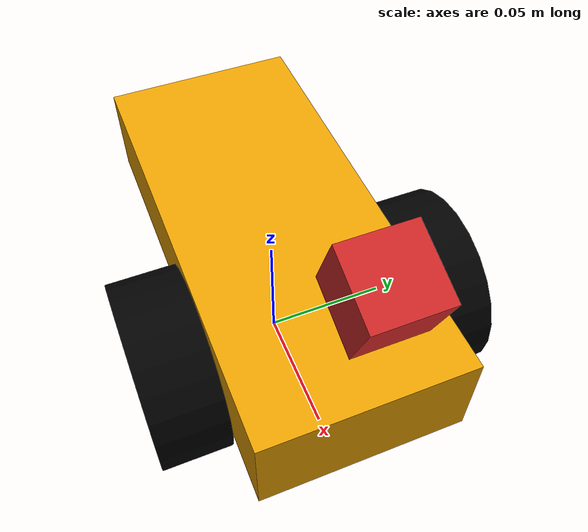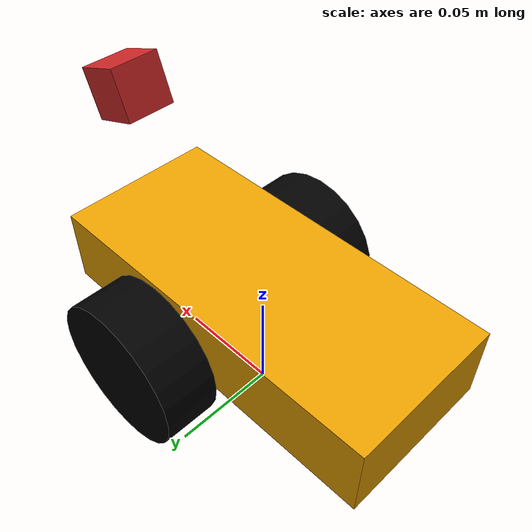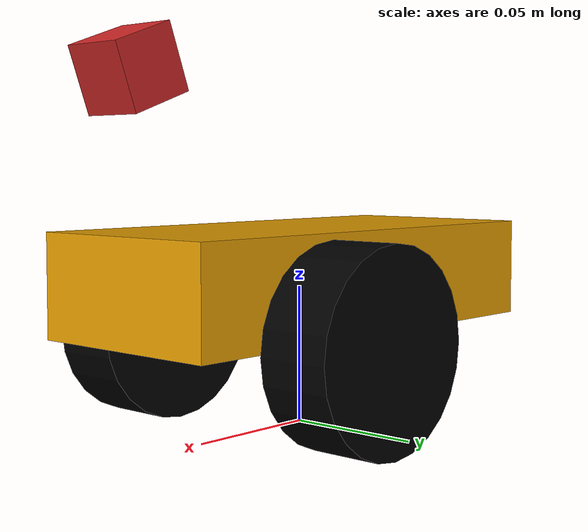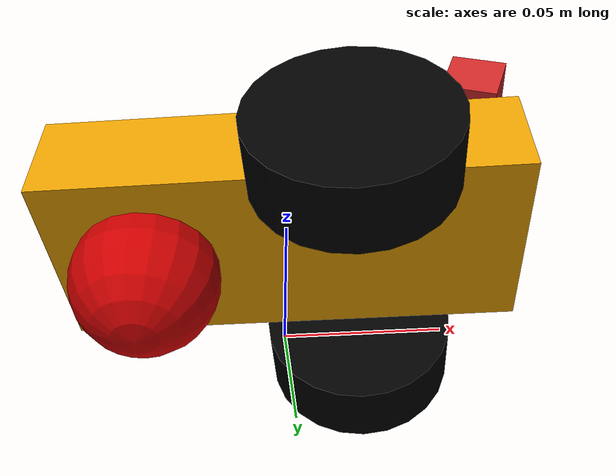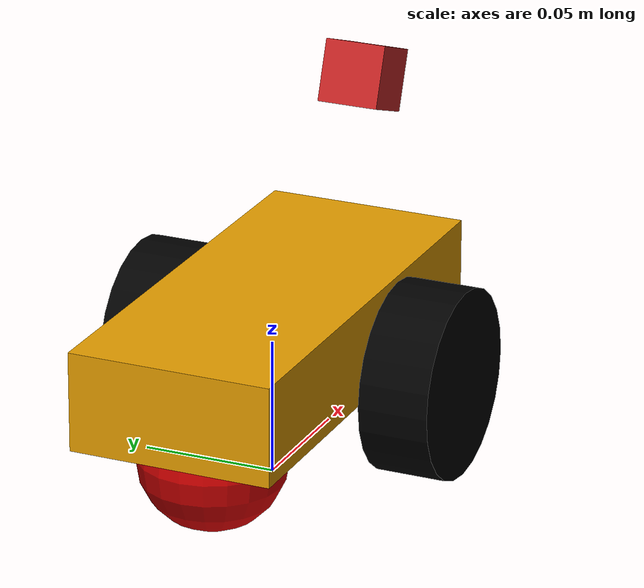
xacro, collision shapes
<?xml version="1.0"?>
<robot name="tingbot" xmlns:xacro="http://www.ros.org/wiki/xacro">
	<xacro:property name="PI" value="3.1415926535897931"/>
	<xacro:property name="veh" value="tingbot"/>
	<xacro:property name="chassisHeight" value="0.0365"/>
	<xacro:property name="chassisLength" value="0.17"/>
	<xacro:property name="chassisWidth" value="0.075"/>
	<xacro:property name="chassisMass" value="0.38"/><!--unit:kg-->

	<xacro:property name="casterRadius" value="0.027"/>
	<xacro:property name="casterMass" value="0.001"/>

	<xacro:property name="wheelWidth" value="0.026"/>
	<xacro:property name="wheelRadius" value="0.035"/>
	<xacro:property name="wheelPos" value="0.06"/>  <!--distance between head-->
	<xacro:property name="wheelMass" value="0.06"/>

	<xacro:property name="cameraSize" value="0.023"/>
	<xacro:property name="cameraMass" value="0.03"/>
	<xacro:include filename="$(find duckietown_description)/urdf/duck.gazebo" />
	<xacro:include filename="$(find duckietown_description)/urdf/materials.xacro" />
	<xacro:include filename="$(find duckietown_description)/urdf/duck_macros.xacro" />

<link name='chassis'>
  <collision>
    <origin xyz="0 0 0.054" rpy="0 0 0"/>
    <geometry>
      <box size="${chassisLength} ${chassisWidth} ${chassisHeight}"/>
    </geometry>
  </collision>
  <visual>
    <origin xyz="0 0 0.03" rpy="0 0 3.14"/>
    <geometry>
      <mesh filename="package://rc_car_description/meshes/duckiebot.dae"/>

      <box size="${chassisLength} ${chassisWidth} ${chassisHeight}"/>
    </geometry>
  </visual>
  <inertial>
    <origin xyz="0 0 0.054" rpy="0 0 0"/>
    <mass value="${chassisMass}"/>
    <box_inertia m="${chassisMass}" x="${chassisLength}" y="${chassisWidth}" z="${chassisHeight}"/>
  </inertial>
</link>

<link name="base_footprint" />

<joint name="base_joint" type="fixed">
  <parent link="base_footprint"/>
  <child link="base_link"/>
</joint>

<link name="base_link" />

<joint name="base_link_joint" type="fixed">
  <parent link="base_link"/>
  <child link="chassis"/>
</joint>

<joint name="caster_wheel_back" type="fixed">
  <parent link="chassis"/>
  <child link="caster_wheel_back"/>
</joint>

<link name="caster_wheel_back">
  <collision>
    <origin xyz="-0.05 0 ${casterRadius}" rpy="0 0 0"/>
    <geometry>
      <sphere radius="${casterRadius}"/>
    </geometry>
  </collision>

  <visual>
    <origin xyz="-0.05 0 0.014" rpy="0 0 0"/>
    <geometry>
      <sphere radius=".014"/>
    </geometry>
    <material name="red"/>
  </visual>

  <inertial>
    <origin xyz="-0.05 0 ${casterRadius}" rpy="0 0 0"/>
    <mass value="${casterMass}"/>
    <sphere_inertia m="${casterMass}" r="${casterRadius}"/>
  </inertial>
</link>

<wheel lr="left" tY="-1"/>
<wheel lr="right" tY="1"/>

<!-- Camera joint -->
  <joint name="camera_joint" type="fixed">
    <origin xyz="0.08 0 0.12475" rpy="0 0.349 0"/>
    <parent link="chassis"/>
    <child link="camera_link"/>
  </joint>

  <!-- Camera -->
 <link name="camera_link">
    <collision>
      <origin xyz="0 0 0" rpy="0 0 0"/>     ------0.08 0 0.12475
      <geometry>
	<box size="${cameraSize} ${cameraSize} ${cameraSize}"/>
      </geometry>
    </collision>

    <visual>
      <origin xyz="-0.03 0 0" rpy="0 0 0"/>
      <geometry>
        <mesh scale ="0.1 0.1 0.1" filename="package://rc_car_description/meshes/duckiebotcam.dae"/>
	<!--box size="${cameraSize} ${cameraSize} ${cameraSize}"/-->
      </geometry>

    </visual>

  <inertial>
    <origin xyz="0. 0 0" rpy="0 0 0"/>
    <mass value="${cameraMass}"/>
    <box_inertia m="${cameraMass}" x="${cameraSize}" y="${cameraSize}" z="${cameraSize}"/>
  </inertial>
  </link>

  <!-- Hokuyo joint -->
  <!-- Hokuyo Laser -->

</robot>

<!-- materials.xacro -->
<robot>
<material name="black">
  <color rgba="0.0 0.0 0.0 1.0"/>
</material>

<material name="blue">
  <color rgba="0.0 0.0 0.8 1.0"/>
</material>

<material name="green">
  <color rgba="0.0 0.8 0.0 1.0"/>
</material>

<material name="grey">
  <color rgba="0.2 0.2 0.2 1.0"/>
</material>

<material name="orange">
  <color rgba="${255/255} ${108/255} ${10/255} 1.0"/>
</material>

<material name="brown">
  <color rgba="${222/255} ${207/255} ${195/255} 1.0"/>
</material>

<material name="red">
  <color rgba="0.8 0.0 0.0 1.0"/>
</material>

<material name="white">
  <color rgba="1.0 1.0 1.0 1.0"/>
</material>
</robot>

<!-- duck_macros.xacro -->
<robot>
<macro name="cylinder_inertia" params="m r h">
  <inertia  ixx="${m*(3*r*r+h*h)/12}" ixy = "0" ixz = "0"
    iyy="${m*(3*r*r+h*h)/12}" iyz = "0"
    izz="${m*r*r/2}"/>
</macro>

<macro name="box_inertia" params="m x y z">
  <inertia  ixx="${m*(y*y+z*z)/12}" ixy = "0" ixz = "0"
    iyy="${m*(x*x+z*z)/12}" iyz = "0"
    izz="${m*(x*x+z*z)/12}"/>
</macro>

<macro name="sphere_inertia" params="m r">
  <inertia  ixx="${2*m*r*r/5}" ixy = "0" ixz = "0"
    iyy="${2*m*r*r/5}" iyz = "0"
    izz="${2*m*r*r/5}"/>
</macro>

<macro name="wheel" params="lr tY">

<link name="${lr}_wheel">
  <collision>
    <origin xyz="0 0 0" rpy="0 ${PI/2} ${PI/2}" />
    <geometry>
      <cylinder length="${wheelWidth}" radius="${wheelRadius}"/>
    </geometry>
  </collision>

  <visual>
    <origin xyz="0 0 0" rpy="0 ${PI/2} ${PI/2}" />
    <geometry>
      <cylinder length="${wheelWidth}" radius="${wheelRadius}"/>

    </geometry>
    <material name="black"/>
  </visual>

  <inertial>
    <origin xyz="0 0 0" rpy="0 ${PI/2} ${PI/2}" />
    <mass value="${wheelMass}"/>
    <cylinder_inertia m="${wheelMass}" r="${wheelRadius}" h="${wheelWidth}"/>
  </inertial>
</link>

<gazebo reference="${lr}_wheel">
  <mu1 value="100000"/>
  <mu2 value="100000"/>
  <kp  value="100000000000.0" />
  <kd  value="1.0" />
  <fdir1 value="0 1 0"/>
  <material>Gazebo/Black</material>
</gazebo>

<joint name="${lr}_wheel_hinge" type="continuous">
  <parent link="chassis"/>
  <child link="${lr}_wheel"/>
<origin xyz="${-wheelPos+chassisLength/2} ${tY*wheelWidth/2+tY*chassisWidth/2} ${wheelRadius}" rpy="0 0 0" />
  <axis xyz="0 1 0" rpy="0 0 0" />
  <joint_properties damping="0.5" friction="0.0"/>
  <limit effort="100" velocity="150"/>
</joint>

<transmission name="${lr}_trans">
  <type>transmission_interface/SimpleTransmission</type>
  <joint name="${lr}_wheel_hinge">
    <hardwareInterface>EffortJointInterface</hardwareInterface>
  </joint>
  <actuator name="${lr}Motor">
    <hardwareInterface>EffortJointInterface</hardwareInterface>
    <mechanicalReduction>10</mechanicalReduction>
  </actuator>
</transmission>

</macro>

</robot>
